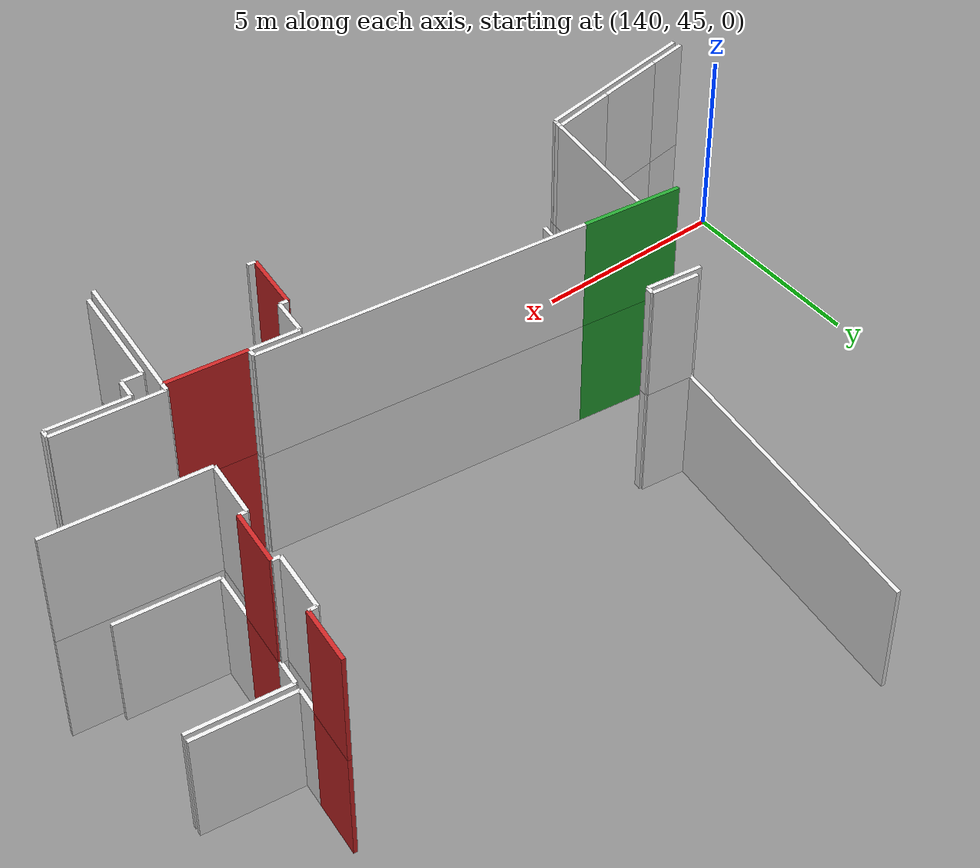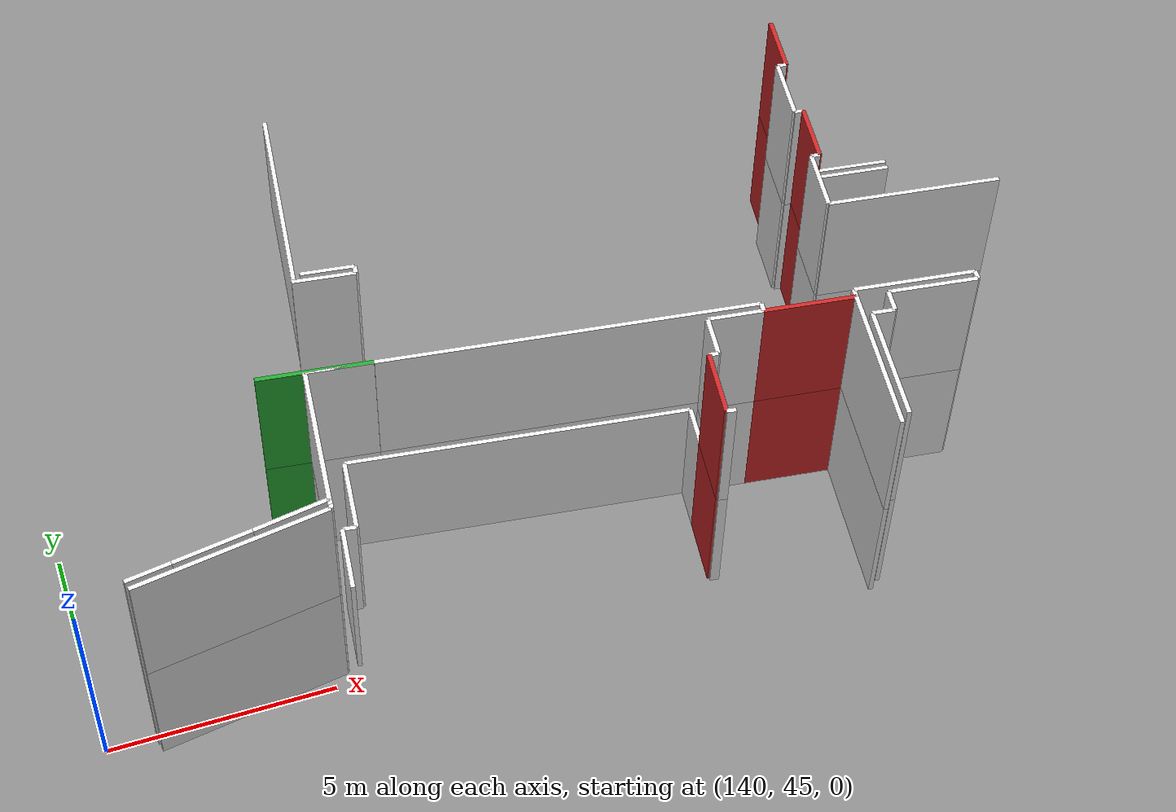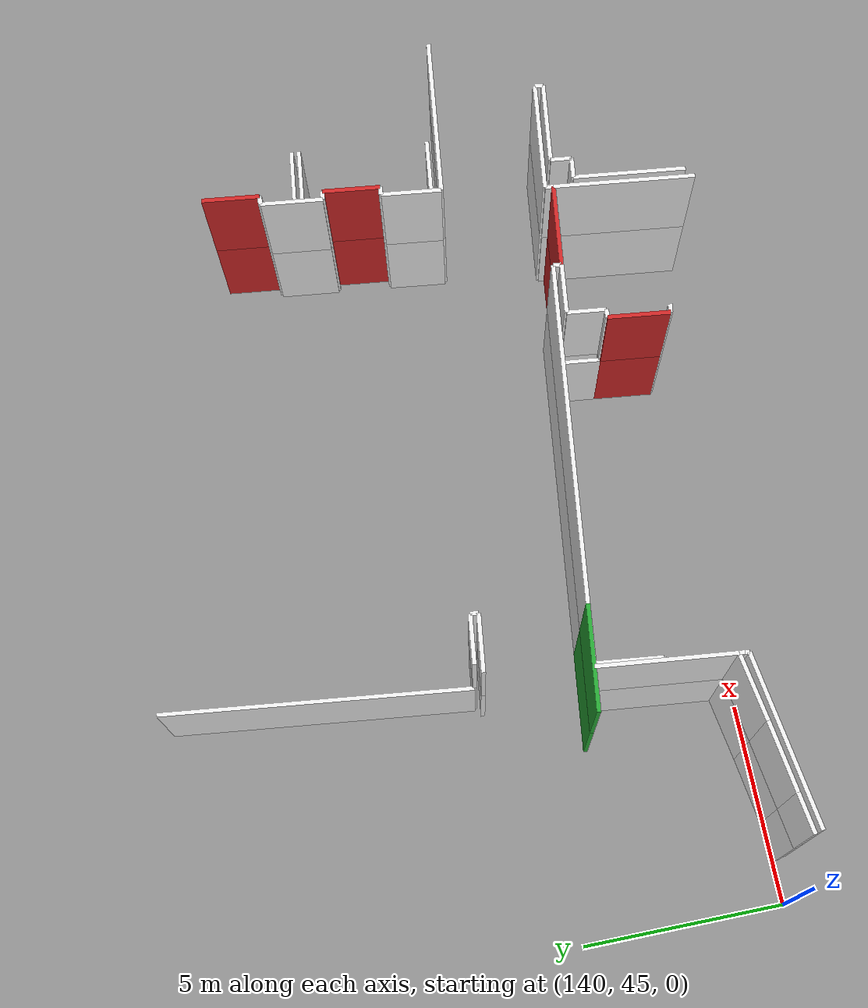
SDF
<sdf version="1.6">
 <world name="default">
  <model name="wall_153.7_45.9_1.5">
   <static>true</static>
   <pose>153.6600000000035 45.92999999993481 1.5 0 0 -1.6918235466009592</pose>
   <link name="link">
    <visual name="visual">
     <geometry><box><size>1.4909057649436974 0.1 3</size></box></geometry>
     <material>
      <script><uri>file://media/materials/scripts/gazebo.material</uri><name>Gazebo/Red</name></script>
     </material>
    </visual>
    <collision name="collision"><geometry><box><size>1.4909057649436974 0.1 3</size></box></geometry></collision>
   </link>
  </model>
  <model name="wall_145.9_48.8_1.5">
   <static>true</static>
   <pose>145.9100000000326 48.77000000001863 1.5 0 0 3.0202406530918178</pose>
   <link name="link">
    <visual name="visual">
     <geometry><box><size>2.478225171308079 0.1 3</size></box></geometry>
     <material>
      <script><uri>file://media/materials/scripts/gazebo.material</uri><name>Gazebo/Green</name></script>
     </material>
    </visual>
    <collision name="collision"><geometry><box><size>2.478225171308079 0.1 3</size></box></geometry></collision>
   </link>
  </model>
  <model name="wall_156.3_47.3_1.5">
   <static>true</static>
   <pose>156.25500000000466 47.32000000006519 1.5 0 0 -0.12002333835124222</pose>
   <link name="link">
    <visual name="visual">
     <geometry><box><size>2.004420115606183 0.1 3</size></box></geometry>
     <material>
      <script><uri>file://media/materials/scripts/gazebo.material</uri><name>Gazebo/Red</name></script>
     </material>
    </visual>
    <collision name="collision"><geometry><box><size>2.004420115606183 0.1 3</size></box></geometry></collision>
   </link>
  </model>
  <model name="wall_158.2_51.9_1.5">
   <static>true</static>
   <pose>158.16500000000815 51.93999999994412 1.5 0 0 1.4482254516771895</pose>
   <link name="link">
    <visual name="visual">
     <geometry><box><size>1.3904315875604971 0.1 3</size></box></geometry>
     <material>
      <script><uri>file://media/materials/scripts/gazebo.material</uri><name>Gazebo/Red</name></script>
     </material>
    </visual>
    <collision name="collision"><geometry><box><size>1.3904315875604971 0.1 3</size></box></geometry></collision>
   </link>
  </model>
  <model name="wall_158.5_54.8_1.5">
   <static>true</static>
   <pose>158.51499999998487 54.800000000046566 1.5 0 0 1.4482254517181363</pose>
   <link name="link">
    <visual name="visual">
     <geometry><box><size>1.390431588022665 0.1 3</size></box></geometry>
     <material>
      <script><uri>file://media/materials/scripts/gazebo.material</uri><name>Gazebo/Red</name></script>
     </material>
    </visual>
    <collision name="collision"><geometry><box><size>1.390431588022665 0.1 3</size></box></geometry></collision>
   </link>
  </model>
  <model name="wall_145.9_48.8_4.5">
   <static>true</static>
   <pose>145.9100000000326 48.77000000001863 4.5 0 0 3.0202406530918178</pose>
   <link name="link">
    <visual name="visual">
     <geometry><box><size>2.478225171308079 0.1 3</size></box></geometry>
     <material>
      <script><uri>file://media/materials/scripts/gazebo.material</uri><name>Gazebo/Green</name></script>
     </material>
    </visual>
    <collision name="collision"><geometry><box><size>2.478225171308079 0.1 3</size></box></geometry></collision>
   </link>
  </model>
  <model name="wall_156.3_47.3_4.5">
   <static>true</static>
   <pose>156.25500000000466 47.32000000006519 4.5 0 0 -0.12002333835124222</pose>
   <link name="link">
    <visual name="visual">
     <geometry><box><size>2.004420115606183 0.1 3</size></box></geometry>
     <material>
      <script><uri>file://media/materials/scripts/gazebo.material</uri><name>Gazebo/Red</name></script>
     </material>
    </visual>
    <collision name="collision"><geometry><box><size>2.004420115606183 0.1 3</size></box></geometry></collision>
   </link>
  </model>
  <model name="wall_158.2_51.9_4.5">
   <static>true</static>
   <pose>158.16500000000815 51.93999999994412 4.5 0 0 1.4482254516771895</pose>
   <link name="link">
    <visual name="visual">
     <geometry><box><size>1.3904315875604971 0.1 3</size></box></geometry>
     <material>
      <script><uri>file://media/materials/scripts/gazebo.material</uri><name>Gazebo/Red</name></script>
     </material>
    </visual>
    <collision name="collision"><geometry><box><size>1.3904315875604971 0.1 3</size></box></geometry></collision>
   </link>
  </model>
  <model name="wall_158.5_54.8_4.5">
   <static>true</static>
   <pose>158.51499999998487 54.800000000046566 4.5 0 0 1.4482254517181363</pose>
   <link name="link">
    <visual name="visual">
     <geometry><box><size>1.390431588022665 0.1 3</size></box></geometry>
     <material>
      <script><uri>file://media/materials/scripts/gazebo.material</uri><name>Gazebo/Red</name></script>
     </material>
    </visual>
    <collision name="collision"><geometry><box><size>1.390431588022665 0.1 3</size></box></geometry></collision>
   </link>
  </model>
  <model name="wall_153.7_45.9_4.5">
   <static>true</static>
   <pose>153.6600000000035 45.92999999993481 4.5 0 0 -1.6918235466009592</pose>
   <link name="link">
    <visual name="visual">
     <geometry><box><size>1.4909057649436974 0.1 3</size></box></geometry>
     <material>
      <script><uri>file://media/materials/scripts/gazebo.material</uri><name>Gazebo/Red</name></script>
     </material>
    </visual>
    <collision name="collision"><geometry><box><size>1.4909057649436974 0.1 3</size></box></geometry></collision>
   </link>
  </model>
  <model name="wall_153.8_47.1_1.5">
   <static>true</static>
   <pose>153.80499999999302 47.139999999897555 1.5 0 0 -1.6872877874817485</pose>
   <link name="link">
    <visual name="visual">
     <geometry><box><size>0.9464142855493431 0.1 3</size></box></geometry>
     <material>
      <script><uri>file://media/materials/scripts/gazebo.material</uri><name>Gazebo/White</name></script>
     </material>
    </visual>
    <collision name="collision"><geometry><box><size>0.9464142855493431 0.1 3</size></box></geometry></collision>
   </link>
  </model>
  <model name="wall_145.7_46.1_1.5">
   <static>true</static>
   <pose>145.72000000000116 46.13000000012107 1.5 0 0 1.449769106988834</pose>
   <link name="link">
    <visual name="visual">
     <geometry><box><size>1.4909057649436974 0.1 3</size></box></geometry>
     <material>
      <script><uri>file://media/materials/scripts/gazebo.material</uri><name>Gazebo/White</name></script>
     </material>
    </visual>
    <collision name="collision"><geometry><box><size>1.4909057649436974 0.1 3</size></box></geometry></collision>
   </link>
  </model>
  <model name="wall_146.0_46.9_1.5">
   <static>true</static>
   <pose>145.95999999999185 46.85000000009313 1.5 0 0 -0.132551532423765</pose>
   <link name="link">
    <visual name="visual">
     <geometry><box><size>0.3026549190018152 0.1 3</size></box></geometry>
     <material>
      <script><uri>file://media/materials/scripts/gazebo.material</uri><name>Gazebo/White</name></script>
     </material>
    </visual>
    <collision name="collision"><geometry><box><size>0.3026549190018152 0.1 3</size></box></geometry></collision>
   </link>
  </model>
  <model name="wall_146.2_47.7_1.5">
   <static>true</static>
   <pose>146.20999999999185 47.675000000046566 1.5 0 0 1.4530010049136584</pose>
   <link name="link">
    <visual name="visual">
     <geometry><box><size>1.7017931718677757 0.1 3</size></box></geometry>
     <material>
      <script><uri>file://media/materials/scripts/gazebo.material</uri><name>Gazebo/White</name></script>
     </material>
    </visual>
    <collision name="collision"><geometry><box><size>1.7017931718677757 0.1 3</size></box></geometry></collision>
   </link>
  </model>
  <model name="wall_150.1_48.1_1.5">
   <static>true</static>
   <pose>150.08499999999185 48.06499999994412 1.5 0 0 -0.11995117374483057</pose>
   <link name="link">
    <visual name="visual">
     <geometry><box><size>7.604643318400634 0.1 3</size></box></geometry>
     <material>
      <script><uri>file://media/materials/scripts/gazebo.material</uri><name>Gazebo/White</name></script>
     </material>
    </visual>
    <collision name="collision"><geometry><box><size>7.604643318400634 0.1 3</size></box></geometry></collision>
   </link>
  </model>
  <model name="wall_159.9_47.0_1.5">
   <static>true</static>
   <pose>159.89999999999418 46.97999999998137 1.5 0 0 1.4711276745918913</pose>
   <link name="link">
    <visual name="visual">
     <geometry><box><size>0.20099751260381943 0.1 3</size></box></geometry>
     <material>
      <script><uri>file://media/materials/scripts/gazebo.material</uri><name>Gazebo/White</name></script>
     </material>
    </visual>
    <collision name="collision"><geometry><box><size>0.20099751260381943 0.1 3</size></box></geometry></collision>
   </link>
  </model>
  <model name="wall_158.6_47.2_1.5">
   <static>true</static>
   <pose>158.5899999999965 47.23999999999069 1.5 0 0 3.020968985070269</pose>
   <link name="link">
    <visual name="visual">
     <geometry><box><size>2.659323222111057 0.1 3</size></box></geometry>
     <material>
      <script><uri>file://media/materials/scripts/gazebo.material</uri><name>Gazebo/White</name></script>
     </material>
    </visual>
    <collision name="collision"><geometry><box><size>2.659323222111057 0.1 3</size></box></geometry></collision>
   </link>
  </model>
  <model name="wall_157.3_47.3_1.5">
   <static>true</static>
   <pose>157.2600000000093 47.300000000046566 1.5 0 0 -1.670464979516584</pose>
   <link name="link">
    <visual name="visual">
     <geometry><box><size>0.20099751214626105 0.1 3</size></box></geometry>
     <material>
      <script><uri>file://media/materials/scripts/gazebo.material</uri><name>Gazebo/White</name></script>
     </material>
    </visual>
    <collision name="collision"><geometry><box><size>0.20099751214626105 0.1 3</size></box></geometry></collision>
   </link>
  </model>
  <model name="wall_155.3_47.5_1.5">
   <static>true</static>
   <pose>155.27000000001863 47.54000000003725 1.5 0 0 1.4711276743037347</pose>
   <link name="link">
    <visual name="visual">
     <geometry><box><size>0.20099751260961132 0.1 3</size></box></geometry>
     <material>
      <script><uri>file://media/materials/scripts/gazebo.material</uri><name>Gazebo/White</name></script>
     </material>
    </visual>
    <collision name="collision"><geometry><box><size>0.20099751260961132 0.1 3</size></box></geometry></collision>
   </link>
  </model>
  <model name="wall_151.2_48.1_1.5">
   <static>true</static>
   <pose>151.21000000002095 48.13000000012107 1.5 0 0 3.021776205795211</pose>
   <link name="link">
    <visual name="visual">
     <geometry><box><size>8.198780397119496 0.1 3</size></box></geometry>
     <material>
      <script><uri>file://media/materials/scripts/gazebo.material</uri><name>Gazebo/White</name></script>
     </material>
    </visual>
    <collision name="collision"><geometry><box><size>8.198780397119496 0.1 3</size></box></geometry></collision>
   </link>
  </model>
  <model name="wall_147.5_51.2_1.5">
   <static>true</static>
   <pose>147.45000000001164 51.175000000046566 1.5 0 0 1.4659193879370842</pose>
   <link name="link">
    <visual name="visual">
     <geometry><box><size>0.19104973169180559 0.1 3</size></box></geometry>
     <material>
      <script><uri>file://media/materials/scripts/gazebo.material</uri><name>Gazebo/White</name></script>
     </material>
    </visual>
    <collision name="collision"><geometry><box><size>0.19104973169180559 0.1 3</size></box></geometry></collision>
   </link>
  </model>
  <model name="wall_146.9_51.3_1.5">
   <static>true</static>
   <pose>146.88000000000466 51.34000000008382 1.5 0 0 3.0214839179154356</pose>
   <link name="link">
    <visual name="visual">
     <geometry><box><size>1.1684177335662667 0.1 3</size></box></geometry>
     <material>
      <script><uri>file://media/materials/scripts/gazebo.material</uri><name>Gazebo/White</name></script>
     </material>
    </visual>
    <collision name="collision"><geometry><box><size>1.1684177335662667 0.1 3</size></box></geometry></collision>
   </link>
  </model>
  <model name="wall_146.8_55.2_1.5">
   <static>true</static>
   <pose>146.75500000000466 55.16500000003725 1.5 0 0 1.4502124243818328</pose>
   <link name="link">
    <visual name="visual">
     <geometry><box><size>7.564932253279079 0.1 3</size></box></geometry>
     <material>
      <script><uri>file://media/materials/scripts/gazebo.material</uri><name>Gazebo/White</name></script>
     </material>
    </visual>
    <collision name="collision"><geometry><box><size>7.564932253279079 0.1 3</size></box></geometry></collision>
   </link>
  </model>
  <model name="wall_158.3_54.1_1.5">
   <static>true</static>
   <pose>158.3299999999872 54.11999999987893 1.5 0 0 3.0419240010121844</pose>
   <link name="link">
    <visual name="visual">
     <geometry><box><size>0.20099751243585498 0.1 3</size></box></geometry>
     <material>
      <script><uri>file://media/materials/scripts/gazebo.material</uri><name>Gazebo/White</name></script>
     </material>
    </visual>
    <collision name="collision"><geometry><box><size>0.20099751243585498 0.1 3</size></box></geometry></collision>
   </link>
  </model>
  <model name="wall_158.1_53.4_1.5">
   <static>true</static>
   <pose>158.13999999998487 53.389999999897555 1.5 0 0 -1.6918235466009592</pose>
   <link name="link">
    <visual name="visual">
     <geometry><box><size>1.4909057649436974 0.1 3</size></box></geometry>
     <material>
      <script><uri>file://media/materials/scripts/gazebo.material</uri><name>Gazebo/White</name></script>
     </material>
    </visual>
    <collision name="collision"><geometry><box><size>1.4909057649436974 0.1 3</size></box></geometry></collision>
   </link>
  </model>
  <model name="wall_158.1_52.6_1.5">
   <static>true</static>
   <pose>158.14999999999418 52.639999999897555 1.5 0 0 -0.09966865257760905</pose>
   <link name="link">
    <visual name="visual">
     <geometry><box><size>0.20099751243585498 0.1 3</size></box></geometry>
     <material>
      <script><uri>file://media/materials/scripts/gazebo.material</uri><name>Gazebo/White</name></script>
     </material>
    </visual>
    <collision name="collision"><geometry><box><size>0.20099751243585498 0.1 3</size></box></geometry></collision>
   </link>
  </model>
  <model name="wall_158.0_51.3_1.5">
   <static>true</static>
   <pose>157.98500000001513 51.26000000000931 1.5 0 0 3.0367157147638757</pose>
   <link name="link">
    <visual name="visual">
     <geometry><box><size>0.19104973174969345 0.1 3</size></box></geometry>
     <material>
      <script><uri>file://media/materials/scripts/gazebo.material</uri><name>Gazebo/White</name></script>
     </material>
    </visual>
    <collision name="collision"><geometry><box><size>0.19104973174969345 0.1 3</size></box></geometry></collision>
   </link>
  </model>
  <model name="wall_157.8_50.6_1.5">
   <static>true</static>
   <pose>157.80000000001746 50.55499999993481 1.5 0 0 -1.6960119063078065</pose>
   <link name="link">
    <visual name="visual">
     <geometry><box><size>1.4412841498042397 0.1 3</size></box></geometry>
     <material>
      <script><uri>file://media/materials/scripts/gazebo.material</uri><name>Gazebo/White</name></script>
     </material>
    </visual>
    <collision name="collision"><geometry><box><size>1.4412841498042397 0.1 3</size></box></geometry></collision>
   </link>
  </model>
  <model name="wall_159.6_49.6_1.5">
   <static>true</static>
   <pose>159.62000000002445 49.609999999869615 1.5 0 0 -0.11984180790081929</pose>
   <link name="link">
    <visual name="visual">
     <geometry><box><size>3.8475966524597003 0.1 3</size></box></geometry>
     <material>
      <script><uri>file://media/materials/scripts/gazebo.material</uri><name>Gazebo/White</name></script>
     </material>
    </visual>
    <collision name="collision"><geometry><box><size>3.8475966524597003 0.1 3</size></box></geometry></collision>
   </link>
  </model>
  <model name="wall_158.0_50.6_1.5">
   <static>true</static>
   <pose>158.00500000000466 50.62999999988824 1.5 0 0 -1.6911791475924711</pose>
   <link name="link">
    <visual name="visual">
     <geometry><box><size>1.2490396313013081 0.1 3</size></box></geometry>
     <material>
      <script><uri>file://media/materials/scripts/gazebo.material</uri><name>Gazebo/White</name></script>
     </material>
    </visual>
    <collision name="collision"><geometry><box><size>1.2490396313013081 0.1 3</size></box></geometry></collision>
   </link>
  </model>
  <model name="wall_159.2_49.9_1.5">
   <static>true</static>
   <pose>159.1699999999837 49.86499999999069 1.5 0 0 -0.11640682593514659</pose>
   <link name="link">
    <visual name="visual">
     <geometry><box><size>2.4968980755447623 0.1 3</size></box></geometry>
     <material>
      <script><uri>file://media/materials/scripts/gazebo.material</uri><name>Gazebo/White</name></script>
     </material>
    </visual>
    <collision name="collision"><geometry><box><size>2.4968980755447623 0.1 3</size></box></geometry></collision>
   </link>
  </model>
  <model name="wall_159.6_53.1_1.5">
   <static>true</static>
   <pose>159.57000000000698 53.125 1.5 0 0 3.025185827469413</pose>
   <link name="link">
    <visual name="visual">
     <geometry><box><size>2.4968980755988457 0.1 3</size></box></geometry>
     <material>
      <script><uri>file://media/materials/scripts/gazebo.material</uri><name>Gazebo/White</name></script>
     </material>
    </visual>
    <collision name="collision"><geometry><box><size>2.4968980755988457 0.1 3</size></box></geometry></collision>
   </link>
  </model>
  <model name="wall_158.3_52.9_1.5">
   <static>true</static>
   <pose>158.29000000000815 52.949999999953434 1.5 0 0 -1.695151321341658</pose>
   <link name="link">
    <visual name="visual">
     <geometry><box><size>0.6449806199952839 0.1 3</size></box></geometry>
     <material>
      <script><uri>file://media/materials/scripts/gazebo.material</uri><name>Gazebo/White</name></script>
     </material>
    </visual>
    <collision name="collision"><geometry><box><size>0.6449806199952839 0.1 3</size></box></geometry></collision>
   </link>
  </model>
  <model name="wall_157.2_45.3_1.5">
   <static>true</static>
   <pose>157.23000000001048 45.34499999997206 1.5 0 0 1.4515150894624935</pose>
   <link name="link">
    <visual name="visual">
     <geometry><box><size>2.6891076590745193 0.1 3</size></box></geometry>
     <material>
      <script><uri>file://media/materials/scripts/gazebo.material</uri><name>Gazebo/White</name></script>
     </material>
    </visual>
    <collision name="collision"><geometry><box><size>2.6891076590745193 0.1 3</size></box></geometry></collision>
   </link>
  </model>
  <model name="wall_157.6_46.7_1.5">
   <static>true</static>
   <pose>157.6350000000093 46.6500000001397 1.5 0 0 -0.12184243713456504</pose>
   <link name="link">
    <visual name="visual">
     <geometry><box><size>0.4936598018854468 0.1 3</size></box></geometry>
     <material>
      <script><uri>file://media/materials/scripts/gazebo.material</uri><name>Gazebo/White</name></script>
     </material>
    </visual>
    <collision name="collision"><geometry><box><size>0.4936598018854468 0.1 3</size></box></geometry></collision>
   </link>
  </model>
  <model name="wall_157.9_46.9_1.5">
   <static>true</static>
   <pose>157.9100000000035 46.87000000011176 1.5 0 0 1.4513674007811488</pose>
   <link name="link">
    <visual name="visual">
     <geometry><box><size>0.5035871324802894 0.1 3</size></box></geometry>
     <material>
      <script><uri>file://media/materials/scripts/gazebo.material</uri><name>Gazebo/White</name></script>
     </material>
    </visual>
    <collision name="collision"><geometry><box><size>0.5035871324802894 0.1 3</size></box></geometry></collision>
   </link>
  </model>
  <model name="wall_158.9_47.0_1.5">
   <static>true</static>
   <pose>158.91500000000815 47.0 1.5 0 0 -0.12246105752953153</pose>
   <link name="link">
    <visual name="visual">
     <geometry><box><size>1.964713719642811 0.1 3</size></box></geometry>
     <material>
      <script><uri>file://media/materials/scripts/gazebo.material</uri><name>Gazebo/White</name></script>
     </material>
    </visual>
    <collision name="collision"><geometry><box><size>1.964713719642811 0.1 3</size></box></geometry></collision>
   </link>
  </model>
  <model name="wall_158.4_53.8_1.5">
   <static>true</static>
   <pose>158.38999999998487 53.79000000003725 1.5 0 0 -1.6951513214312084</pose>
   <link name="link">
    <visual name="visual">
     <geometry><box><size>0.6449806195332185 0.1 3</size></box></geometry>
     <material>
      <script><uri>file://media/materials/scripts/gazebo.material</uri><name>Gazebo/White</name></script>
     </material>
    </visual>
    <collision name="collision"><geometry><box><size>0.6449806195332185 0.1 3</size></box></geometry></collision>
   </link>
  </model>
  <model name="wall_159.6_53.3_1.5">
   <static>true</static>
   <pose>159.5899999999965 53.32000000006519 1.5 0 0 -0.12038282090969171</pose>
   <link name="link">
    <visual name="visual">
     <geometry><box><size>2.498079262226073 0.1 3</size></box></geometry>
     <material>
      <script><uri>file://media/materials/scripts/gazebo.material</uri><name>Gazebo/White</name></script>
     </material>
    </visual>
    <collision name="collision"><geometry><box><size>2.498079262226073 0.1 3</size></box></geometry></collision>
   </link>
  </model>
  <model name="wall_153.7_45.2_1.5">
   <static>true</static>
   <pose>153.6700000000128 45.175000000046566 1.5 0 0 2.992702706990747</pose>
   <link name="link">
    <visual name="visual">
     <geometry><box><size>0.20223748414268597 0.1 3</size></box></geometry>
     <material>
      <script><uri>file://media/materials/scripts/gazebo.material</uri><name>Gazebo/White</name></script>
     </material>
    </visual>
    <collision name="collision"><geometry><box><size>0.20223748414268597 0.1 3</size></box></geometry></collision>
   </link>
  </model>
  <model name="wall_153.9_46.7_1.5">
   <static>true</static>
   <pose>153.85000000000582 46.65999999991618 1.5 0 0 -0.09966865257760905</pose>
   <link name="link">
    <visual name="visual">
     <geometry><box><size>0.20099751243585498 0.1 3</size></box></geometry>
     <material>
      <script><uri>file://media/materials/scripts/gazebo.material</uri><name>Gazebo/White</name></script>
     </material>
    </visual>
    <collision name="collision"><geometry><box><size>0.20099751243585498 0.1 3</size></box></geometry></collision>
   </link>
  </model>
  <model name="wall_154.0_47.1_1.5">
   <static>true</static>
   <pose>154.00500000000466 47.11499999999069 1.5 0 0 1.4530637520266436</pose>
   <link name="link">
    <visual name="visual">
     <geometry><box><size>0.9364827816402892 0.1 3</size></box></geometry>
     <material>
      <script><uri>file://media/materials/scripts/gazebo.material</uri><name>Gazebo/White</name></script>
     </material>
    </visual>
    <collision name="collision"><geometry><box><size>0.9364827816402892 0.1 3</size></box></geometry></collision>
   </link>
  </model>
  <model name="wall_154.7_47.5_1.5">
   <static>true</static>
   <pose>154.6600000000035 47.51000000000931 1.5 0 0 -0.11614162698606886</pose>
   <link name="link">
    <visual name="visual">
     <geometry><box><size>1.2081390648697887 0.1 3</size></box></geometry>
     <material>
      <script><uri>file://media/materials/scripts/gazebo.material</uri><name>Gazebo/White</name></script>
     </material>
    </visual>
    <collision name="collision"><geometry><box><size>1.2081390648697887 0.1 3</size></box></geometry></collision>
   </link>
  </model>
  <model name="wall_157.0_45.5_1.5">
   <static>true</static>
   <pose>157.0450000000128 45.515000000130385 1.5 0 0 -1.6918630613513788</pose>
   <link name="link">
    <visual name="visual">
     <geometry><box><size>3.3948490394614383 0.1 3</size></box></geometry>
     <material>
      <script><uri>file://media/materials/scripts/gazebo.material</uri><name>Gazebo/White</name></script>
     </material>
    </visual>
    <collision name="collision"><geometry><box><size>3.3948490394614383 0.1 3</size></box></geometry></collision>
   </link>
  </model>
  <model name="wall_146.8_51.2_1.5">
   <static>true</static>
   <pose>146.7600000000093 51.16500000003725 1.5 0 0 -0.12435499449408483</pose>
   <link name="link">
    <visual name="visual">
     <geometry><box><size>1.37058381718765 0.1 3</size></box></geometry>
     <material>
      <script><uri>file://media/materials/scripts/gazebo.material</uri><name>Gazebo/White</name></script>
     </material>
    </visual>
    <collision name="collision"><geometry><box><size>1.37058381718765 0.1 3</size></box></geometry></collision>
   </link>
  </model>
  <model name="wall_146.4_48.7_1.5">
   <static>true</static>
   <pose>146.42500000001746 48.705000000074506 1.5 0 0 3.0232668711350636</pose>
   <link name="link">
    <visual name="visual">
     <geometry><box><size>1.440069442754304 0.1 3</size></box></geometry>
     <material>
      <script><uri>file://media/materials/scripts/gazebo.material</uri><name>Gazebo/White</name></script>
     </material>
    </visual>
    <collision name="collision"><geometry><box><size>1.440069442754304 0.1 3</size></box></geometry></collision>
   </link>
  </model>
  <model name="wall_145.5_47.2_1.5">
   <static>true</static>
   <pose>145.52999999999884 47.169999999925494 1.5 0 0 -1.6814535479747077</pose>
   <link name="link">
    <visual name="visual">
     <geometry><box><size>3.259938649956506 0.1 3</size></box></geometry>
     <material>
      <script><uri>file://media/materials/scripts/gazebo.material</uri><name>Gazebo/White</name></script>
     </material>
    </visual>
    <collision name="collision"><geometry><box><size>3.259938649956506 0.1 3</size></box></geometry></collision>
   </link>
  </model>
  <model name="wall_144.5_45.4_1.5">
   <static>true</static>
   <pose>144.53999999997905 45.41499999980442 1.5 0 0 -2.9764439761635133</pose>
   <link name="link">
    <visual name="visual">
     <geometry><box><size>1.6423458831789883 0.1 3</size></box></geometry>
     <material>
      <script><uri>file://media/materials/scripts/gazebo.material</uri><name>Gazebo/White</name></script>
     </material>
    </visual>
    <collision name="collision"><geometry><box><size>1.6423458831789883 0.1 3</size></box></geometry></collision>
   </link>
  </model>
  <model name="wall_142.9_45.1_1.5">
   <static>true</static>
   <pose>142.88999999998487 45.14999999990687 1.5 0 0 -2.9880488711795428</pose>
   <link name="link">
    <visual name="visual">
     <geometry><box><size>1.6999999999589122 0.1 3</size></box></geometry>
     <material>
      <script><uri>file://media/materials/scripts/gazebo.material</uri><name>Gazebo/White</name></script>
     </material>
    </visual>
    <collision name="collision"><geometry><box><size>1.6999999999589122 0.1 3</size></box></geometry></collision>
   </link>
  </model>
  <model name="wall_141.6_44.9_1.5">
   <static>true</static>
   <pose>141.56500000000233 44.94500000006519 1.5 0 0 -2.9881687321003683</pose>
   <link name="link">
    <visual name="visual">
     <geometry><box><size>0.9815294187735064 0.1 3</size></box></geometry>
     <material>
      <script><uri>file://media/materials/scripts/gazebo.material</uri><name>Gazebo/White</name></script>
     </material>
    </visual>
    <collision name="collision"><geometry><box><size>0.9815294187735064 0.1 3</size></box></geometry></collision>
   </link>
  </model>
  <model name="wall_143.2_45.0_1.5">
   <static>true</static>
   <pose>143.22500000000582 45.0 1.5 0 0 0.15157309554865728</pose>
   <link name="link">
    <visual name="visual">
     <geometry><box><size>4.238596465764388 0.1 3</size></box></geometry>
     <material>
      <script><uri>file://media/materials/scripts/gazebo.material</uri><name>Gazebo/White</name></script>
     </material>
    </visual>
    <collision name="collision"><geometry><box><size>4.238596465764388 0.1 3</size></box></geometry></collision>
   </link>
  </model>
  <model name="wall_145.5_47.1_1.5">
   <static>true</static>
   <pose>145.51500000001397 47.05499999993481 1.5 0 0 -1.6827185694293054</pose>
   <link name="link">
    <visual name="visual">
     <geometry><box><size>3.4918476486572034 0.1 3</size></box></geometry>
     <material>
      <script><uri>file://media/materials/scripts/gazebo.material</uri><name>Gazebo/White</name></script>
     </material>
    </visual>
    <collision name="collision"><geometry><box><size>3.4918476486572034 0.1 3</size></box></geometry></collision>
   </link>
  </model>
  <model name="wall_145.3_45.4_1.5">
   <static>true</static>
   <pose>145.3300000000163 45.36999999987893 1.5 0 0 1.373400766945016</pose>
   <link name="link">
    <visual name="visual">
     <geometry><box><size>0.10198039036683233 0.1 3</size></box></geometry>
     <material>
      <script><uri>file://media/materials/scripts/gazebo.material</uri><name>Gazebo/White</name></script>
     </material>
    </visual>
    <collision name="collision"><geometry><box><size>0.10198039036683233 0.1 3</size></box></geometry></collision>
   </link>
  </model>
  <model name="wall_145.3_45.5_1.5">
   <static>true</static>
   <pose>145.34500000000116 45.484999999869615 1.5 0 0 1.4940244358332768</pose>
   <link name="link">
    <visual name="visual">
     <geometry><box><size>0.13038404798887343 0.1 3</size></box></geometry>
     <material>
      <script><uri>file://media/materials/scripts/gazebo.material</uri><name>Gazebo/White</name></script>
     </material>
    </visual>
    <collision name="collision"><geometry><box><size>0.13038404798887343 0.1 3</size></box></geometry></collision>
   </link>
  </model>
  <model name="wall_159.9_47.0_4.5">
   <static>true</static>
   <pose>159.89999999999418 46.97999999998137 4.5 0 0 1.4711276745918913</pose>
   <link name="link">
    <visual name="visual">
     <geometry><box><size>0.20099751260381943 0.1 3</size></box></geometry>
     <material>
      <script><uri>file://media/materials/scripts/gazebo.material</uri><name>Gazebo/White</name></script>
     </material>
    </visual>
    <collision name="collision"><geometry><box><size>0.20099751260381943 0.1 3</size></box></geometry></collision>
   </link>
  </model>
  <model name="wall_158.6_47.2_4.5">
   <static>true</static>
   <pose>158.5899999999965 47.23999999999069 4.5 0 0 3.020968985070269</pose>
   <link name="link">
    <visual name="visual">
     <geometry><box><size>2.659323222111057 0.1 3</size></box></geometry>
     <material>
      <script><uri>file://media/materials/scripts/gazebo.material</uri><name>Gazebo/White</name></script>
     </material>
    </visual>
    <collision name="collision"><geometry><box><size>2.659323222111057 0.1 3</size></box></geometry></collision>
   </link>
  </model>
  <model name="wall_157.3_47.3_4.5">
   <static>true</static>
   <pose>157.2600000000093 47.300000000046566 4.5 0 0 -1.670464979516584</pose>
   <link name="link">
    <visual name="visual">
     <geometry><box><size>0.20099751214626105 0.1 3</size></box></geometry>
     <material>
      <script><uri>file://media/materials/scripts/gazebo.material</uri><name>Gazebo/White</name></script>
     </material>
    </visual>
    <collision name="collision"><geometry><box><size>0.20099751214626105 0.1 3</size></box></geometry></collision>
   </link>
  </model>
  <model name="wall_155.3_47.5_4.5">
   <static>true</static>
   <pose>155.27000000001863 47.54000000003725 4.5 0 0 1.4711276743037347</pose>
   <link name="link">
    <visual name="visual">
     <geometry><box><size>0.20099751260961132 0.1 3</size></box></geometry>
     <material>
      <script><uri>file://media/materials/scripts/gazebo.material</uri><name>Gazebo/White</name></script>
     </material>
    </visual>
    <collision name="collision"><geometry><box><size>0.20099751260961132 0.1 3</size></box></geometry></collision>
   </link>
  </model>
  <model name="wall_151.2_48.1_4.5">
   <static>true</static>
   <pose>151.21000000002095 48.13000000012107 4.5 0 0 3.021776205795211</pose>
   <link name="link">
    <visual name="visual">
     <geometry><box><size>8.198780397119496 0.1 3</size></box></geometry>
     <material>
      <script><uri>file://media/materials/scripts/gazebo.material</uri><name>Gazebo/White</name></script>
     </material>
    </visual>
    <collision name="collision"><geometry><box><size>8.198780397119496 0.1 3</size></box></geometry></collision>
   </link>
  </model>
  <model name="wall_147.5_51.2_4.5">
   <static>true</static>
   <pose>147.45000000001164 51.175000000046566 4.5 0 0 1.4659193879370842</pose>
   <link name="link">
    <visual name="visual">
     <geometry><box><size>0.19104973169180559 0.1 3</size></box></geometry>
     <material>
      <script><uri>file://media/materials/scripts/gazebo.material</uri><name>Gazebo/White</name></script>
     </material>
    </visual>
    <collision name="collision"><geometry><box><size>0.19104973169180559 0.1 3</size></box></geometry></collision>
   </link>
  </model>
  <model name="wall_146.9_51.3_4.5">
   <static>true</static>
   <pose>146.88000000000466 51.34000000008382 4.5 0 0 3.0214839179154356</pose>
   <link name="link">
    <visual name="visual">
     <geometry><box><size>1.1684177335662667 0.1 3</size></box></geometry>
     <material>
      <script><uri>file://media/materials/scripts/gazebo.material</uri><name>Gazebo/White</name></script>
     </material>
    </visual>
    <collision name="collision"><geometry><box><size>1.1684177335662667 0.1 3</size></box></geometry></collision>
   </link>
  </model>
  <model name="wall_158.3_54.1_4.5">
   <static>true</static>
   <pose>158.3299999999872 54.11999999987893 4.5 0 0 3.0419240010121844</pose>
   <link name="link">
    <visual name="visual">
     <geometry><box><size>0.20099751243585498 0.1 3</size></box></geometry>
     <material>
      <script><uri>file://media/materials/scripts/gazebo.material</uri><name>Gazebo/White</name></script>
     </material>
    </visual>
    <collision name="collision"><geometry><box><size>0.20099751243585498 0.1 3</size></box></geometry></collision>
   </link>
  </model>
  <model name="wall_158.1_53.4_4.5">
   <static>true</static>
   <pose>158.13999999998487 53.389999999897555 4.5 0 0 -1.6918235466009592</pose>
   <link name="link">
    <visual name="visual">
     <geometry><box><size>1.4909057649436974 0.1 3</size></box></geometry>
     <material>
      <script><uri>file://media/materials/scripts/gazebo.material</uri><name>Gazebo/White</name></script>
     </material>
    </visual>
    <collision name="collision"><geometry><box><size>1.4909057649436974 0.1 3</size></box></geometry></collision>
   </link>
  </model>
  <model name="wall_158.1_52.6_4.5">
   <static>true</static>
   <pose>158.14999999999418 52.639999999897555 4.5 0 0 -0.09966865257760905</pose>
   <link name="link">
    <visual name="visual">
     <geometry><box><size>0.20099751243585498 0.1 3</size></box></geometry>
     <material>
      <script><uri>file://media/materials/scripts/gazebo.material</uri><name>Gazebo/White</name></script>
     </material>
    </visual>
    <collision name="collision"><geometry><box><size>0.20099751243585498 0.1 3</size></box></geometry></collision>
   </link>
  </model>
  <model name="wall_158.0_51.3_4.5">
   <static>true</static>
   <pose>157.98500000001513 51.26000000000931 4.5 0 0 3.0367157147638757</pose>
   <link name="link">
    <visual name="visual">
     <geometry><box><size>0.19104973174969345 0.1 3</size></box></geometry>
     <material>
      <script><uri>file://media/materials/scripts/gazebo.material</uri><name>Gazebo/White</name></script>
     </material>
    </visual>
    <collision name="collision"><geometry><box><size>0.19104973174969345 0.1 3</size></box></geometry></collision>
   </link>
  </model>
  <model name="wall_157.8_50.6_4.5">
   <static>true</static>
   <pose>157.80000000001746 50.55499999993481 4.5 0 0 -1.6960119063078065</pose>
   <link name="link">
    <visual name="visual">
     <geometry><box><size>1.4412841498042397 0.1 3</size></box></geometry>
     <material>
      <script><uri>file://media/materials/scripts/gazebo.material</uri><name>Gazebo/White</name></script>
     </material>
    </visual>
    <collision name="collision"><geometry><box><size>1.4412841498042397 0.1 3</size></box></geometry></collision>
   </link>
  </model>
  <model name="wall_159.6_49.6_4.5">
   <static>true</static>
   <pose>159.62000000002445 49.609999999869615 4.5 0 0 -0.11984180790081929</pose>
   <link name="link">
    <visual name="visual">
     <geometry><box><size>3.8475966524597003 0.1 3</size></box></geometry>
     <material>
      <script><uri>file://media/materials/scripts/gazebo.material</uri><name>Gazebo/White</name></script>
     </material>
    </visual>
    <collision name="collision"><geometry><box><size>3.8475966524597003 0.1 3</size></box></geometry></collision>
   </link>
  </model>
  <model name="wall_157.2_45.3_4.5">
   <static>true</static>
   <pose>157.23000000001048 45.34499999997206 4.5 0 0 1.4515150894624935</pose>
   <link name="link">
    <visual name="visual">
     <geometry><box><size>2.6891076590745193 0.1 3</size></box></geometry>
     <material>
      <script><uri>file://media/materials/scripts/gazebo.material</uri><name>Gazebo/White</name></script>
     </material>
    </visual>
    <collision name="collision"><geometry><box><size>2.6891076590745193 0.1 3</size></box></geometry></collision>
   </link>
  </model>
  <model name="wall_157.6_46.7_4.5">
   <static>true</static>
   <pose>157.6350000000093 46.6500000001397 4.5 0 0 -0.12184243713456504</pose>
   <link name="link">
    <visual name="visual">
     <geometry><box><size>0.4936598018854468 0.1 3</size></box></geometry>
     <material>
      <script><uri>file://media/materials/scripts/gazebo.material</uri><name>Gazebo/White</name></script>
     </material>
    </visual>
    <collision name="collision"><geometry><box><size>0.4936598018854468 0.1 3</size></box></geometry></collision>
   </link>
  </model>
  <model name="wall_157.9_46.9_4.5">
   <static>true</static>
   <pose>157.9100000000035 46.87000000011176 4.5 0 0 1.4513674007811488</pose>
   <link name="link">
    <visual name="visual">
     <geometry><box><size>0.5035871324802894 0.1 3</size></box></geometry>
     <material>
      <script><uri>file://media/materials/scripts/gazebo.material</uri><name>Gazebo/White</name></script>
     </material>
    </visual>
    <collision name="collision"><geometry><box><size>0.5035871324802894 0.1 3</size></box></geometry></collision>
   </link>
  </model>
  <model name="wall_158.9_47.0_4.5">
   <static>true</static>
   <pose>158.91500000000815 47.0 4.5 0 0 -0.12246105752953153</pose>
   <link name="link">
    <visual name="visual">
     <geometry><box><size>1.964713719642811 0.1 3</size></box></geometry>
     <material>
      <script><uri>file://media/materials/scripts/gazebo.material</uri><name>Gazebo/White</name></script>
     </material>
    </visual>
    <collision name="collision"><geometry><box><size>1.964713719642811 0.1 3</size></box></geometry></collision>
   </link>
  </model>
  <model name="wall_153.7_45.2_4.5">
   <static>true</static>
   <pose>153.6700000000128 45.175000000046566 4.5 0 0 2.992702706990747</pose>
   <link name="link">
    <visual name="visual">
     <geometry><box><size>0.20223748414268597 0.1 3</size></box></geometry>
     <material>
      <script><uri>file://media/materials/scripts/gazebo.material</uri><name>Gazebo/White</name></script>
     </material>
    </visual>
    <collision name="collision"><geometry><box><size>0.20223748414268597 0.1 3</size></box></geometry></collision>
   </link>
  </model>
  <model name="wall_153.9_46.7_4.5">
   <static>true</static>
   <pose>153.85000000000582 46.65999999991618 4.5 0 0 -0.09966865257760905</pose>
   <link name="link">
    <visual name="visual">
     <geometry><box><size>0.20099751243585498 0.1 3</size></box></geometry>
     <material>
      <script><uri>file://media/materials/scripts/gazebo.material</uri><name>Gazebo/White</name></script>
     </material>
    </visual>
    <collision name="collision"><geometry><box><size>0.20099751243585498 0.1 3</size></box></geometry></collision>
   </link>
  </model>
  <model name="wall_154.0_47.1_4.5">
   <static>true</static>
   <pose>154.00500000000466 47.11499999999069 4.5 0 0 1.4530637520266436</pose>
   <link name="link">
    <visual name="visual">
     <geometry><box><size>0.9364827816402892 0.1 3</size></box></geometry>
     <material>
      <script><uri>file://media/materials/scripts/gazebo.material</uri><name>Gazebo/White</name></script>
     </material>
    </visual>
    <collision name="collision"><geometry><box><size>0.9364827816402892 0.1 3</size></box></geometry></collision>
   </link>
  </model>
  <model name="wall_154.7_47.5_4.5">
   <static>true</static>
   <pose>154.6600000000035 47.51000000000931 4.5 0 0 -0.11614162698606886</pose>
   <link name="link">
    <visual name="visual">
     <geometry><box><size>1.2081390648697887 0.1 3</size></box></geometry>
     <material>
      <script><uri>file://media/materials/scripts/gazebo.material</uri><name>Gazebo/White</name></script>
     </material>
    </visual>
    <collision name="collision"><geometry><box><size>1.2081390648697887 0.1 3</size></box></geometry></collision>
   </link>
  </model>
  <model name="wall_157.0_45.5_4.5">
   <static>true</static>
   <pose>157.0450000000128 45.515000000130385 4.5 0 0 -1.6918630613513788</pose>
   <link name="link">
    <visual name="visual">
     <geometry><box><size>3.3948490394614383 0.1 3</size></box></geometry>
     <material>
      <script><uri>file://media/materials/scripts/gazebo.material</uri><name>Gazebo/White</name></script>
     </material>
    </visual>
    <collision name="collision"><geometry><box><size>3.3948490394614383 0.1 3</size></box></geometry></collision>
   </link>
  </model>
  <model name="wall_146.8_51.2_4.5">
   <static>true</static>
   <pose>146.7600000000093 51.16500000003725 4.5 0 0 -0.12435499449408483</pose>
   <link name="link">
    <visual name="visual">
     <geometry><box><size>1.37058381718765 0.1 3</size></box></geometry>
     <material>
      <script><uri>file://media/materials/scripts/gazebo.material</uri><name>Gazebo/White</name></script>
     </material>
    </visual>
    <collision name="collision"><geometry><box><size>1.37058381718765 0.1 3</size></box></geometry></collision>
   </link>
  </model>
  <model name="wall_146.4_48.7_4.5">
   <static>true</static>
   <pose>146.42500000001746 48.705000000074506 4.5 0 0 3.0232668711350636</pose>
   <link name="link">
    <visual name="visual">
     <geometry><box><size>1.440069442754304 0.1 3</size></box></geometry>
     <material>
      <script><uri>file://media/materials/scripts/gazebo.material</uri><name>Gazebo/White</name></script>
     </material>
    </visual>
    <collision name="collision"><geometry><box><size>1.440069442754304 0.1 3</size></box></geometry></collision>
   </link>
  </model>
  <model name="wall_145.5_47.2_4.5">
   <static>true</static>
   <pose>145.52999999999884 47.169999999925494 4.5 0 0 -1.6814535479747077</pose>
   <link name="link">
    <visual name="visual">
     <geometry><box><size>3.259938649956506 0.1 3</size></box></geometry>
     <material>
      <script><uri>file://media/materials/scripts/gazebo.material</uri><name>Gazebo/White</name></script>
     </material>
    </visual>
    <collision name="collision"><geometry><box><size>3.259938649956506 0.1 3</size></box></geometry></collision>
   </link>
  </model>
  <model name="wall_144.5_45.4_4.5">
   <static>true</static>
   <pose>144.53999999997905 45.41499999980442 4.5 0 0 -2.9764439761635133</pose>
   <link name="link">
    <visual name="visual">
     <geometry><box><size>1.6423458831789883 0.1 3</size></box></geometry>
     <material>
      <script><uri>file://media/materials/scripts/gazebo.material</uri><name>Gazebo/White</name></script>
     </material>
    </visual>
    <collision name="collision"><geometry><box><size>1.6423458831789883 0.1 3</size></box></geometry></collision>
   </link>
  </model>
  <model name="wall_142.9_45.1_4.5">
   <static>true</static>
   <pose>142.88999999998487 45.14999999990687 4.5 0 0 -2.9880488711795428</pose>
   <link name="link">
    <visual name="visual">
     <geometry><box><size>1.6999999999589122 0.1 3</size></box></geometry>
     <material>
      <script><uri>file://media/materials/scripts/gazebo.material</uri><name>Gazebo/White</name></script>
     </material>
    </visual>
    <collision name="collision"><geometry><box><size>1.6999999999589122 0.1 3</size></box></geometry></collision>
   </link>
  </model>
  <model name="wall_141.6_44.9_4.5">
   <static>true</static>
   <pose>141.56500000000233 44.94500000006519 4.5 0 0 -2.9881687321003683</pose>
   <link name="link">
    <visual name="visual">
     <geometry><box><size>0.9815294187735064 0.1 3</size></box></geometry>
     <material>
      <script><uri>file://media/materials/scripts/gazebo.material</uri><name>Gazebo/White</name></script>
     </material>
    </visual>
    <collision name="collision"><geometry><box><size>0.9815294187735064 0.1 3</size></box></geometry></collision>
   </link>
  </model>
  <model name="wall_143.2_45.0_4.5">
   <static>true</static>
   <pose>143.22500000000582 45.0 4.5 0 0 0.15157309554865728</pose>
   <link name="link">
    <visual name="visual">
     <geometry><box><size>4.238596465764388 0.1 3</size></box></geometry>
     <material>
      <script><uri>file://media/materials/scripts/gazebo.material</uri><name>Gazebo/White</name></script>
     </material>
    </visual>
    <collision name="collision"><geometry><box><size>4.238596465764388 0.1 3</size></box></geometry></collision>
   </link>
  </model>
  <model name="wall_145.3_45.4_4.5">
   <static>true</static>
   <pose>145.3300000000163 45.36999999987893 4.5 0 0 1.373400766945016</pose>
   <link name="link">
    <visual name="visual">
     <geometry><box><size>0.10198039036683233 0.1 3</size></box></geometry>
     <material>
      <script><uri>file://media/materials/scripts/gazebo.material</uri><name>Gazebo/White</name></script>
     </material>
    </visual>
    <collision name="collision"><geometry><box><size>0.10198039036683233 0.1 3</size></box></geometry></collision>
   </link>
  </model>
  <model name="wall_145.3_45.5_4.5">
   <static>true</static>
   <pose>145.34500000000116 45.484999999869615 4.5 0 0 1.4940244358332768</pose>
   <link name="link">
    <visual name="visual">
     <geometry><box><size>0.13038404798887343 0.1 3</size></box></geometry>
     <material>
      <script><uri>file://media/materials/scripts/gazebo.material</uri><name>Gazebo/White</name></script>
     </material>
    </visual>
    <collision name="collision"><geometry><box><size>0.13038404798887343 0.1 3</size></box></geometry></collision>
   </link>
  </model>
 </world>
</sdf>
